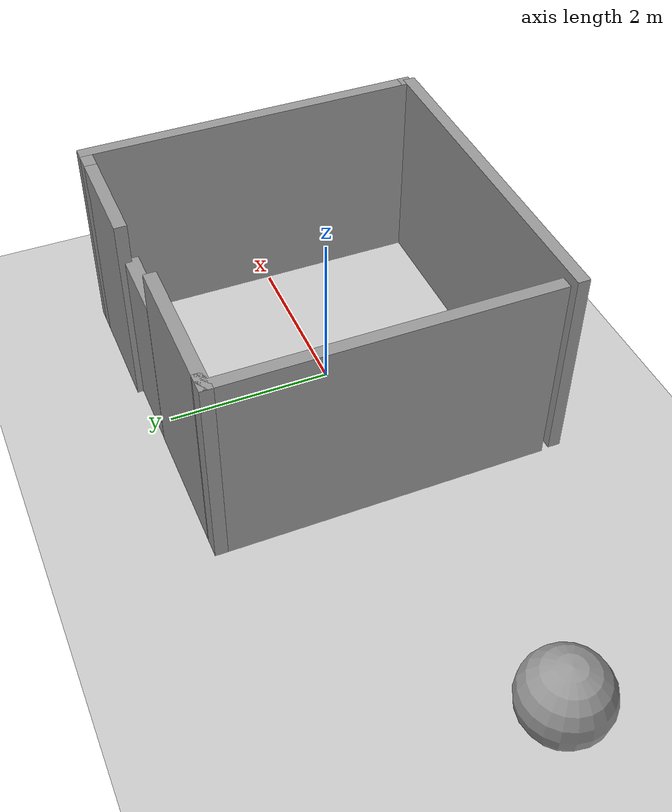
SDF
<sdf version="1.7">
 <world name="default">
  <light name="sun" type="directional">
   <pose>0 0 10 0 -0 0</pose>
   <diffuse>0.8 0.8 0.8 1</diffuse>
   <specular>0.2 0.2 0.2 1</specular>
   <attenuation>
    <range>1000</range>
    <constant>0.9</constant>
    <linear>0.01</linear>
    <quadratic>0.001</quadratic>
   </attenuation>
   <direction>-0.5 0.1 -0.9</direction>
   <spot><inner_angle>0</inner_angle><outer_angle>0</outer_angle><falloff>0</falloff></spot>
  </light>
  <model name="ground_plane">
   <static>1</static>
   <link name="link">
    <collision name="collision">
     <geometry><plane><normal>0 0 1</normal><size>100 100</size></plane></geometry>
     <surface>
      <contact><collide_bitmask>65535</collide_bitmask></contact>
      <friction><ode><mu>100</mu><mu2>50</mu2></ode></friction>
     </surface>
    </collision>
    <visual name="visual">
     <cast_shadows>0</cast_shadows>
     <geometry><plane><normal>0 0 1</normal><size>100 100</size></plane></geometry>
     <material>
      <script><uri>file://media/materials/scripts/gazebo.material</uri><name>Gazebo/Grey</name></script>
     </material>
    </visual>
   </link>
  </model>
  <gravity>0 0 -9.8</gravity>
  <magnetic_field>6e-06 2.3e-05 -4.2e-05</magnetic_field>
  <atmosphere type="adiabatic"/>
  <physics type="ode">
   <max_step_size>0.001</max_step_size>
   <real_time_factor>1</real_time_factor>
   <real_time_update_rate>1000</real_time_update_rate>
  </physics>
  <scene><ambient>0.4 0.4 0.4 1</ambient><background>0.7 0.7 0.7 1</background><shadows>1</shadows></scene>
  <spherical_coordinates>
   <surface_model>EARTH_WGS84</surface_model>
   <latitude_deg>0</latitude_deg>
   <longitude_deg>0</longitude_deg>
   <elevation>0</elevation>
   <heading_deg>0</heading_deg>
  </spherical_coordinates>
  <model name="autonous">
   <pose>0.036063 0.082045 0 0 -0 0</pose>
   <link name="Door_0">
    <collision name="Door_0_Collision">
     <geometry><box><size>0.9 0.17 2</size></box></geometry>
     <pose>0 0 1 0 -0 0</pose>
    </collision>
    <visual name="Door_0_Visual">
     <pose>0 0 1 0 -0 0</pose>
     <geometry><box><size>0.9 0.17 2</size></box></geometry>
     <material>
      <script><uri>file://media/materials/scripts/gazebo.material</uri><name>Gazebo/Grey</name></script>
     </material>
    </visual>
    <pose>0.168451 2.0013 0 0 -0 0</pose>
   </link>
   <link name="Wall_10">
    <collision name="Wall_10_Collision">
     <geometry><box><size>0.5 0.15 2.5</size></box></geometry>
     <pose>0 0 1.25 0 -0 0</pose>
    </collision>
    <visual name="Wall_10_Visual">
     <pose>0 0 1.25 0 -0 0</pose>
     <geometry><box><size>0.5 0.15 2.5</size></box></geometry>
     <material>
      <script><uri>file://media/materials/scripts/gazebo.material</uri><name>Gazebo/Grey</name></script>
      <ambient>1 1 1 1</ambient>
     </material>
     <meta><layer>0</layer></meta>
    </visual>
    <pose>1.90606 2.08175 0 0 -0 0</pose>
   </link>
   <link name="Wall_11">
    <collision name="Wall_11_Collision">
     <geometry><box><size>4.25 0.15 2.5</size></box></geometry>
     <pose>0 0 1.25 0 -0 0</pose>
    </collision>
    <visual name="Wall_11_Visual">
     <pose>0 0 1.25 0 -0 0</pose>
     <geometry><box><size>4.25 0.15 2.5</size></box></geometry>
     <material>
      <script><uri>file://media/materials/scripts/gazebo.material</uri><name>Gazebo/Grey</name></script>
      <ambient>1 1 1 1</ambient>
     </material>
     <meta><layer>0</layer></meta>
    </visual>
    <pose>2.08106 0.031755 0 0 -0 -1.5708</pose>
   </link>
   <link name="Wall_12">
    <collision name="Wall_12_Collision">
     <geometry><box><size>0.15 0.15 2.5</size></box></geometry>
     <pose>0 0 1.25 0 -0 0</pose>
    </collision>
    <visual name="Wall_12_Visual">
     <pose>0 0 1.25 0 -0 0</pose>
     <geometry><box><size>0.15 0.15 2.5</size></box></geometry>
     <material>
      <script><uri>file://media/materials/scripts/gazebo.material</uri><name>Gazebo/Grey</name></script>
      <ambient>1 1 1 1</ambient>
     </material>
     <meta><layer>0</layer></meta>
    </visual>
    <pose>2.08106 -2.01824 0 0 -0 0</pose>
   </link>
   <link name="Wall_22">
    <collision name="Wall_22_Collision">
     <geometry><box><size>0.25 0.15 2.5</size></box></geometry>
     <pose>0 0 1.25 0 -0 0</pose>
    </collision>
    <visual name="Wall_22_Visual">
     <pose>0 0 1.25 0 -0 0</pose>
     <geometry><box><size>0.25 0.15 2.5</size></box></geometry>
     <material>
      <script><uri>file://media/materials/scripts/gazebo.material</uri><name>Gazebo/Grey</name></script>
      <ambient>1 1 1 1</ambient>
     </material>
     <meta><layer>0</layer></meta>
    </visual>
    <pose>-2.03106 2.01408 0 0 -0 3.14159</pose>
   </link>
   <link name="Wall_23">
    <collision name="Wall_23_Collision">
     <geometry><box><size>4 0.15 2.5</size></box></geometry>
     <pose>0 0 1.25 0 -0 0</pose>
    </collision>
    <visual name="Wall_23_Visual">
     <pose>0 0 1.25 0 -0 0</pose>
     <geometry><box><size>4 0.15 2.5</size></box></geometry>
     <material>
      <script><uri>file://media/materials/scripts/gazebo.material</uri><name>Gazebo/Grey</name></script>
      <ambient>1 1 1 1</ambient>
     </material>
     <meta><layer>0</layer></meta>
    </visual>
    <pose>-2.08106 0.089076 0 0 -0 -1.5708</pose>
   </link>
   <link name="Wall_26">
    <collision name="Wall_26_Collision">
     <geometry><box><size>4.25 0.15 2.5</size></box></geometry>
     <pose>0 0 1.25 0 -0 0</pose>
    </collision>
    <visual name="Wall_26_Visual">
     <pose>0 0 1.25 0 -0 0</pose>
     <geometry><box><size>4.25 0.15 2.5</size></box></geometry>
     <material>
      <script><uri>file://media/materials/scripts/gazebo.material</uri><name>Gazebo/Grey</name></script>
      <ambient>1 1 1 1</ambient>
     </material>
     <meta><layer>0</layer></meta>
    </visual>
    <pose>-0.014156 -2.08175 0 0 -0 0</pose>
   </link>
   <link name="Wall_5">
    <collision name="Wall_5_Collision">
     <geometry><box><size>0.15 0.15 2.5</size></box></geometry>
     <pose>0 0 1.25 0 -0 0</pose>
    </collision>
    <visual name="Wall_5_Visual">
     <pose>0 0 1.25 0 -0 0</pose>
     <geometry><box><size>0.15 0.15 2.5</size></box></geometry>
     <material>
      <script><uri>file://media/materials/scripts/gazebo.material</uri><name>Gazebo/Grey</name></script>
      <ambient>1 1 1 1</ambient>
     </material>
     <meta><layer>0</layer></meta>
    </visual>
    <pose>-1.98106 2.01408 0 0 -0 0</pose>
   </link>
   <link name="Wall_6">
    <collision name="Wall_6_Collision">
     <geometry><box><size>0.15 0.15 2.5</size></box></geometry>
     <pose>0 0 1.25 0 -0 0</pose>
    </collision>
    <visual name="Wall_6_Visual">
     <pose>0 0 1.25 0 -0 0</pose>
     <geometry><box><size>0.15 0.15 2.5</size></box></geometry>
     <material>
      <script><uri>file://media/materials/scripts/gazebo.material</uri><name>Gazebo/Grey</name></script>
      <ambient>1 1 1 1</ambient>
     </material>
     <meta><layer>0</layer></meta>
    </visual>
    <pose>-1.98106 2.01408 0 0 -0 0</pose>
   </link>
   <link name="Wall_7">
    <collision name="Wall_7_Collision">
     <geometry><box><size>1.75 0.15 2.5</size></box></geometry>
     <pose>0 0 1.25 0 -0 0</pose>
    </collision>
    <visual name="Wall_7_Visual">
     <pose>0 0 1.25 0 -0 0</pose>
     <geometry><box><size>1.75 0.15 2.5</size></box></geometry>
     <material>
      <script><uri>file://media/materials/scripts/gazebo.material</uri><name>Gazebo/Grey</name></script>
      <ambient>1 1 1 1</ambient>
     </material>
     <meta><layer>0</layer></meta>
    </visual>
    <pose>-1.18106 2.01408 0 0 -0 0</pose>
   </link>
   <link name="Wall_9">
    <collision name="Wall_9_Collision">
     <geometry><box><size>1.25 0.15 2.5</size></box></geometry>
     <pose>0 0 1.25 0 -0 0</pose>
    </collision>
    <visual name="Wall_9_Visual">
     <pose>0 0 1.25 0 -0 0</pose>
     <geometry><box><size>1.25 0.15 2.5</size></box></geometry>
     <material>
      <script><uri>file://media/materials/scripts/gazebo.material</uri><name>Gazebo/Grey</name></script>
      <ambient>1 1 1 1</ambient>
     </material>
     <meta><layer>0</layer></meta>
    </visual>
    <pose>1.18106 2.08175 0 0 -0 0</pose>
   </link>
   <static>1</static>
  </model>
  <model name="unit_sphere">
   <pose>-5.28052 -0.228619 0.5 0 -0 0</pose>
   <link name="link">
    <inertial>
     <mass>1</mass>
     <inertia><ixx>0.1</ixx><ixy>0</ixy><ixz>0</ixz><iyy>0.1</iyy><iyz>0</iyz><izz>0.1</izz></inertia>
    </inertial>
    <collision name="collision"><geometry><sphere><radius>0.5</radius></sphere></geometry></collision>
    <visual name="visual">
     <geometry><sphere><radius>0.5</radius></sphere></geometry>
     <material>
      <script><name>Gazebo/Grey</name><uri>file://media/materials/scripts/gazebo.material</uri></script>
     </material>
    </visual>
   </link>
  </model>
 </world>
</sdf>
